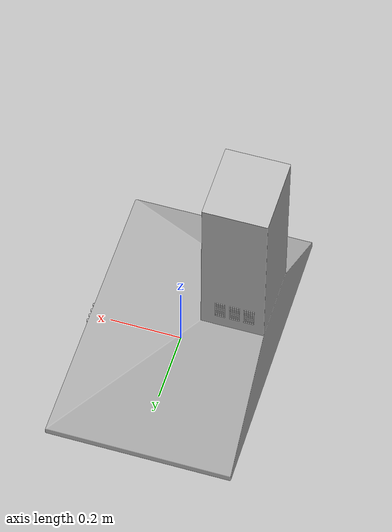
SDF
<?xml version='1.0'?>
<sdf version='1.4'>
  <model name='s__1060'>
    <pose>0 0 0 0 0 0</pose>
    <static>true</static>
    <link name='link'>
      <collision name='collision'>
        <pose>0 0 0 0 0 0</pose>
        <geometry>
          <box>
            <size>0.520031 0.8 2</size>
          </box>
        </geometry>
      </collision>
      <visual name='visual'>
        <pose>0 0 0 0 0 0</pose>
        <geometry>
          <mesh><uri>model://s__1060/s__1060.dae</uri></mesh>
        </geometry>
      </visual>
    </link>
  </model>
</sdf>
